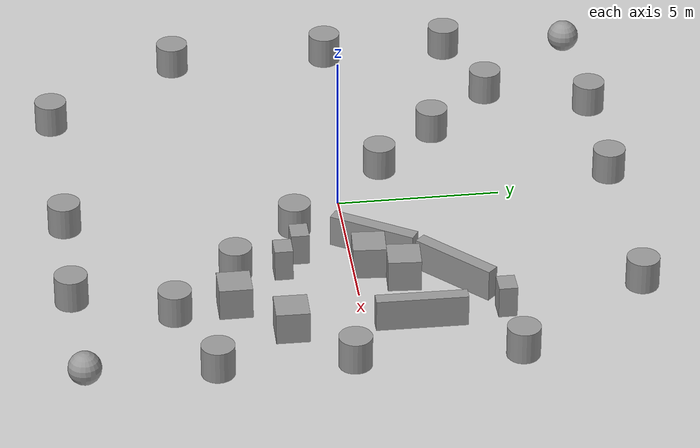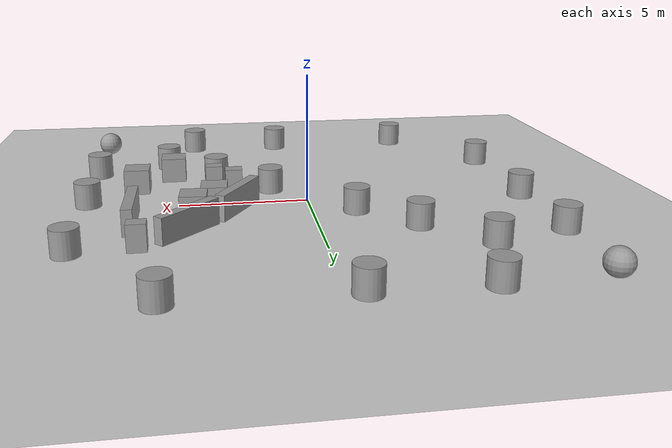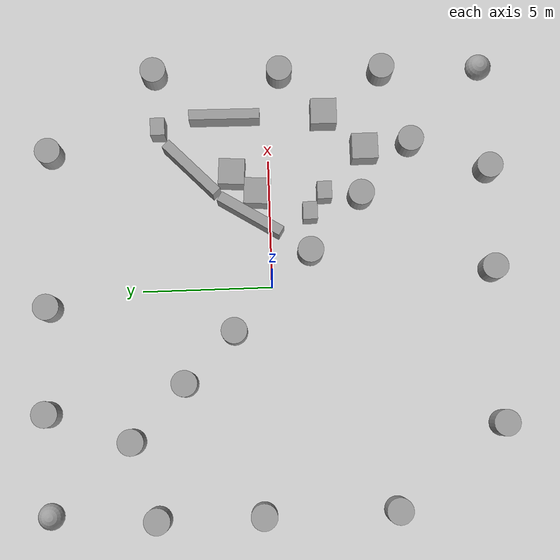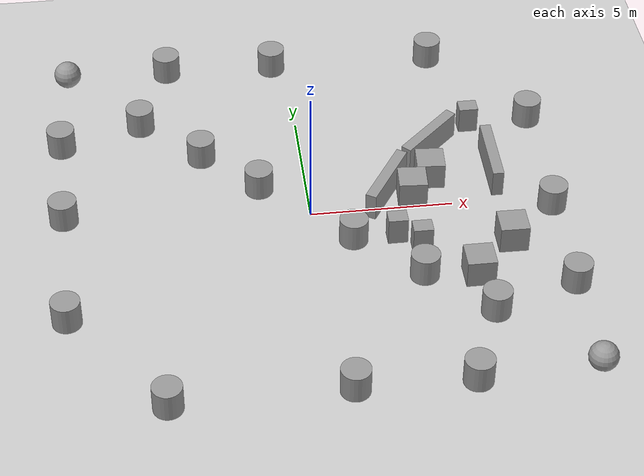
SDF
<sdf version="1.7">
 <world name="default">
  <light name="sun" type="directional">
   <pose>0 0 10 0 -0 0</pose>
   <diffuse>0.8 0.8 0.8 1</diffuse>
   <specular>0.2 0.2 0.2 1</specular>
   <attenuation>
    <range>1000</range>
    <constant>0.9</constant>
    <linear>0.01</linear>
    <quadratic>0.001</quadratic>
   </attenuation>
   <direction>-0.5 0.1 -0.9</direction>
   <spot><inner_angle>0</inner_angle><outer_angle>0</outer_angle><falloff>0</falloff></spot>
  </light>
  <model name="ground_plane">
   <static>1</static>
   <link name="link">
    <collision name="collision">
     <geometry><plane><normal>0 0 1</normal><size>100 100</size></plane></geometry>
     <surface>
      <contact><collide_bitmask>65535</collide_bitmask></contact>
      <friction><ode><mu>100</mu><mu2>50</mu2></ode></friction>
     </surface>
    </collision>
    <visual name="visual">
     <cast_shadows>0</cast_shadows>
     <geometry><plane><normal>0 0 1</normal><size>100 100</size></plane></geometry>
     <material>
      <script><uri>file://media/materials/scripts/gazebo.material</uri><name>Gazebo/Grey</name></script>
     </material>
    </visual>
   </link>
  </model>
  <gravity>0 0 -9.8</gravity>
  <magnetic_field>6e-06 2.3e-05 -4.2e-05</magnetic_field>
  <atmosphere type="adiabatic"/>
  <physics type="ode">
   <max_step_size>0.001</max_step_size>
   <real_time_factor>1</real_time_factor>
   <real_time_update_rate>1000</real_time_update_rate>
  </physics>
  <scene><ambient>0.4 0.4 0.4 1</ambient><background>0.7 0.7 0.7 1</background><shadows>1</shadows></scene>
  <spherical_coordinates>
   <surface_model>EARTH_WGS84</surface_model>
   <latitude_deg>0</latitude_deg>
   <longitude_deg>0</longitude_deg>
   <elevation>0</elevation>
   <heading_deg>0</heading_deg>
  </spherical_coordinates>
  <model name="unit_cylinder_0">
   <pose>5.48267 8.46677 0.499994 -3e-06 -1e-06 -0</pose>
   <link name="link">
    <inertial>
     <mass>1</mass>
     <inertia><ixx>0.145833</ixx><ixy>0</ixy><ixz>0</ixz><iyy>0.145833</iyy><iyz>0</iyz><izz>0.125</izz></inertia>
    </inertial>
    <collision name="collision">
     <geometry><cylinder><radius>0.5</radius><length>1</length></cylinder></geometry>
    </collision>
    <visual name="visual">
     <geometry><cylinder><radius>0.5</radius><length>1</length></cylinder></geometry>
     <material>
      <script><name>Gazebo/Grey</name><uri>file://media/materials/scripts/gazebo.material</uri></script>
     </material>
    </visual>
   </link>
  </model>
  <model name="unit_sphere">
   <pose>8.38084 -8.34858 0.5 0 -0 0</pose>
   <link name="link">
    <inertial>
     <mass>1</mass>
     <inertia><ixx>0.1</ixx><ixy>0</ixy><ixz>0</ixz><iyy>0.1</iyy><iyz>0</iyz><izz>0.1</izz></inertia>
    </inertial>
    <collision name="collision"><geometry><sphere><radius>0.5</radius></sphere></geometry></collision>
    <visual name="visual">
     <geometry><sphere><radius>0.5</radius></sphere></geometry>
     <material>
      <script><name>Gazebo/Grey</name><uri>file://media/materials/scripts/gazebo.material</uri></script>
     </material>
    </visual>
   </link>
  </model>
  <model name="unit_sphere_0">
   <pose>-8.31687 8.47543 0.5 0 -0 0</pose>
   <link name="link">
    <inertial>
     <mass>1</mass>
     <inertia><ixx>0.1</ixx><ixy>0</ixy><ixz>0</ixz><iyy>0.1</iyy><iyz>0</iyz><izz>0.1</izz></inertia>
    </inertial>
    <collision name="collision"><geometry><sphere><radius>0.5</radius></sphere></geometry></collision>
    <visual name="visual">
     <geometry><sphere><radius>0.5</radius></sphere></geometry>
     <material>
      <script><name>Gazebo/Grey</name><uri>file://media/materials/scripts/gazebo.material</uri></script>
     </material>
    </visual>
   </link>
  </model>
  <model name="unit_cylinder_5">
   <pose>-4.56175 8.64096 0.499996 1e-06 -0 0</pose>
   <link name="link">
    <inertial>
     <mass>1</mass>
     <inertia><ixx>0.145833</ixx><ixy>0</ixy><ixz>0</ixz><iyy>0.145833</iyy><iyz>0</iyz><izz>0.125</izz></inertia>
    </inertial>
    <collision name="collision">
     <geometry><cylinder><radius>0.5</radius><length>1</length></cylinder></geometry>
    </collision>
    <visual name="visual">
     <geometry><cylinder><radius>0.5</radius><length>1</length></cylinder></geometry>
     <material>
      <script><name>Gazebo/Grey</name><uri>file://media/materials/scripts/gazebo.material</uri></script>
     </material>
    </visual>
   </link>
  </model>
  <model name="unit_cylinder_9">
   <pose>-5.45244 -8.52381 0.499996 1e-06 -0 0</pose>
   <link name="link">
    <inertial>
     <mass>1</mass>
     <inertia><ixx>0.145833</ixx><ixy>0</ixy><ixz>0</ixz><iyy>0.145833</iyy><iyz>0</iyz><izz>0.125</izz></inertia>
    </inertial>
    <collision name="collision">
     <geometry><cylinder><radius>0.5</radius><length>1</length></cylinder></geometry>
    </collision>
    <visual name="visual">
     <geometry><cylinder><radius>0.5</radius><length>1</length></cylinder></geometry>
     <material>
      <script><name>Gazebo/Grey</name><uri>file://media/materials/scripts/gazebo.material</uri></script>
     </material>
    </visual>
   </link>
  </model>
  <model name="unit_cylinder_4">
   <pose>-8.59965 4.53452 0.499996 2e-06 -0 0</pose>
   <link name="link">
    <inertial>
     <mass>1</mass>
     <inertia><ixx>0.145833</ixx><ixy>0</ixy><ixz>0</ixz><iyy>0.145833</iyy><iyz>0</iyz><izz>0.125</izz></inertia>
    </inertial>
    <collision name="collision">
     <geometry><cylinder><radius>0.5</radius><length>1</length></cylinder></geometry>
    </collision>
    <visual name="visual">
     <geometry><cylinder><radius>0.5</radius><length>1</length></cylinder></geometry>
     <material>
      <script><name>Gazebo/Grey</name><uri>file://media/materials/scripts/gazebo.material</uri></script>
     </material>
    </visual>
   </link>
  </model>
  <model name="unit_cylinder_13">
   <pose>-0.546293 8.56291 0.499996 2e-06 -0 0</pose>
   <link name="link">
    <inertial>
     <mass>1</mass>
     <inertia><ixx>0.145833</ixx><ixy>0</ixy><ixz>0</ixz><iyy>0.145833</iyy><iyz>0</iyz><izz>0.125</izz></inertia>
    </inertial>
    <collision name="collision">
     <geometry><cylinder><radius>0.5</radius><length>1</length></cylinder></geometry>
    </collision>
    <visual name="visual">
     <geometry><cylinder><radius>0.5</radius><length>1</length></cylinder></geometry>
     <material>
      <script><name>Gazebo/Grey</name><uri>file://media/materials/scripts/gazebo.material</uri></script>
     </material>
    </visual>
   </link>
  </model>
  <model name="unit_cylinder_14">
   <pose>4.34909 -8.48951 0.499993 -2e-06 -0 -0</pose>
   <link name="link">
    <inertial>
     <mass>1</mass>
     <inertia><ixx>0.145833</ixx><ixy>0</ixy><ixz>0</ixz><iyy>0.145833</iyy><iyz>0</iyz><izz>0.125</izz></inertia>
    </inertial>
    <collision name="collision">
     <geometry><cylinder><radius>0.5</radius><length>1</length></cylinder></geometry>
    </collision>
    <visual name="visual">
     <geometry><cylinder><radius>0.5</radius><length>1</length></cylinder></geometry>
     <material>
      <script><name>Gazebo/Grey</name><uri>file://media/materials/scripts/gazebo.material</uri></script>
     </material>
    </visual>
   </link>
  </model>
  <model name="unit_cylinder_15">
   <pose>0.435022 -8.45658 0.499993 -2e-06 -0 -0</pose>
   <link name="link">
    <inertial>
     <mass>1</mass>
     <inertia><ixx>0.145833</ixx><ixy>0</ixy><ixz>0</ixz><iyy>0.145833</iyy><iyz>0</iyz><izz>0.125</izz></inertia>
    </inertial>
    <collision name="collision">
     <geometry><cylinder><radius>0.5</radius><length>1</length></cylinder></geometry>
    </collision>
    <visual name="visual">
     <geometry><cylinder><radius>0.5</radius><length>1</length></cylinder></geometry>
     <material>
      <script><name>Gazebo/Grey</name><uri>file://media/materials/scripts/gazebo.material</uri></script>
     </material>
    </visual>
   </link>
  </model>
  <model name="unit_cylinder_2">
   <pose>8.42167 -4.51497 0.499996 3e-06 1e-06 -0</pose>
   <link name="link">
    <inertial>
     <mass>1</mass>
     <inertia><ixx>0.145833</ixx><ixy>0</ixy><ixz>0</ixz><iyy>0.145833</iyy><iyz>0</iyz><izz>0.125</izz></inertia>
    </inertial>
    <collision name="collision">
     <geometry><cylinder><radius>0.5</radius><length>1</length></cylinder></geometry>
    </collision>
    <visual name="visual">
     <geometry><cylinder><radius>0.5</radius><length>1</length></cylinder></geometry>
     <material>
      <script><name>Gazebo/Grey</name><uri>file://media/materials/scripts/gazebo.material</uri></script>
     </material>
    </visual>
   </link>
  </model>
  <model name="unit_cylinder_3">
   <pose>8.46452 -0.53683 0.499996 3e-06 1e-06 -0</pose>
   <link name="link">
    <inertial>
     <mass>1</mass>
     <inertia><ixx>0.145833</ixx><ixy>0</ixy><ixz>0</ixz><iyy>0.145833</iyy><iyz>0</iyz><izz>0.125</izz></inertia>
    </inertial>
    <collision name="collision">
     <geometry><cylinder><radius>0.5</radius><length>1</length></cylinder></geometry>
    </collision>
    <visual name="visual">
     <geometry><cylinder><radius>0.5</radius><length>1</length></cylinder></geometry>
     <material>
      <script><name>Gazebo/Grey</name><uri>file://media/materials/scripts/gazebo.material</uri></script>
     </material>
    </visual>
   </link>
  </model>
  <model name="unit_cylinder_6">
   <pose>-8.57603 0.593668 0.499996 3e-06 1e-06 -0</pose>
   <link name="link">
    <inertial>
     <mass>1</mass>
     <inertia><ixx>0.145833</ixx><ixy>0</ixy><ixz>0</ixz><iyy>0.145833</iyy><iyz>0</iyz><izz>0.125</izz></inertia>
    </inertial>
    <collision name="collision">
     <geometry><cylinder><radius>0.5</radius><length>1</length></cylinder></geometry>
    </collision>
    <visual name="visual">
     <geometry><cylinder><radius>0.5</radius><length>1</length></cylinder></geometry>
     <material>
      <script><name>Gazebo/Grey</name><uri>file://media/materials/scripts/gazebo.material</uri></script>
     </material>
    </visual>
   </link>
  </model>
  <model name="unit_cylinder_8">
   <pose>-8.52981 -4.40025 0.499997 3e-06 2e-06 0</pose>
   <link name="link">
    <inertial>
     <mass>1</mass>
     <inertia><ixx>0.145833</ixx><ixy>0</ixy><ixz>0</ixz><iyy>0.145833</iyy><iyz>0</iyz><izz>0.125</izz></inertia>
    </inertial>
    <collision name="collision">
     <geometry><cylinder><radius>0.5</radius><length>1</length></cylinder></geometry>
    </collision>
    <visual name="visual">
     <geometry><cylinder><radius>0.5</radius><length>1</length></cylinder></geometry>
     <material>
      <script><name>Gazebo/Grey</name><uri>file://media/materials/scripts/gazebo.material</uri></script>
     </material>
    </visual>
   </link>
  </model>
  <model name="unit_cylinder">
   <pose>8.56086 4.36649 0.499997 3e-06 2e-06 0</pose>
   <link name="link">
    <inertial>
     <mass>1</mass>
     <inertia><ixx>0.145833</ixx><ixy>0</ixy><ixz>0</ixz><iyy>0.145833</iyy><iyz>0</iyz><izz>0.125</izz></inertia>
    </inertial>
    <collision name="collision">
     <geometry><cylinder><radius>0.5</radius><length>1</length></cylinder></geometry>
    </collision>
    <visual name="visual">
     <geometry><cylinder><radius>0.5</radius><length>1</length></cylinder></geometry>
     <material>
      <script><name>Gazebo/Grey</name><uri>file://media/materials/scripts/gazebo.material</uri></script>
     </material>
    </visual>
   </link>
  </model>
  <model name="unit_cylinder_10">
   <pose>1.30985 -1.49912 0.499991 -1e-06 -1e-06 0.029438</pose>
   <link name="link">
    <inertial>
     <mass>1</mass>
     <inertia><ixx>0.145833</ixx><ixy>0</ixy><ixz>0</ixz><iyy>0.145833</iyy><iyz>0</iyz><izz>0.125</izz></inertia>
    </inertial>
    <collision name="collision">
     <geometry><cylinder><radius>0.5</radius><length>1</length></cylinder></geometry>
    </collision>
    <visual name="visual">
     <geometry><cylinder><radius>0.5</radius><length>1</length></cylinder></geometry>
     <material>
      <script><name>Gazebo/Grey</name><uri>file://media/materials/scripts/gazebo.material</uri></script>
     </material>
    </visual>
   </link>
  </model>
  <model name="unit_cylinder_12">
   <pose>3.4547 -3.51971 0.499994 -3e-06 -1e-06 -0</pose>
   <link name="link">
    <inertial>
     <mass>1</mass>
     <inertia><ixx>0.145833</ixx><ixy>0</ixy><ixz>0</ixz><iyy>0.145833</iyy><iyz>0</iyz><izz>0.125</izz></inertia>
    </inertial>
    <collision name="collision">
     <geometry><cylinder><radius>0.5</radius><length>1</length></cylinder></geometry>
    </collision>
    <visual name="visual">
     <geometry><cylinder><radius>0.5</radius><length>1</length></cylinder></geometry>
     <material>
      <script><name>Gazebo/Grey</name><uri>file://media/materials/scripts/gazebo.material</uri></script>
     </material>
    </visual>
   </link>
  </model>
  <model name="unit_cylinder_7">
   <pose>-5.69693 5.45815 0.499996 3e-06 1e-06 -0</pose>
   <link name="link">
    <inertial>
     <mass>1</mass>
     <inertia><ixx>0.145833</ixx><ixy>0</ixy><ixz>0</ixz><iyy>0.145833</iyy><iyz>0</iyz><izz>0.125</izz></inertia>
    </inertial>
    <collision name="collision">
     <geometry><cylinder><radius>0.5</radius><length>1</length></cylinder></geometry>
    </collision>
    <visual name="visual">
     <geometry><cylinder><radius>0.5</radius><length>1</length></cylinder></geometry>
     <material>
      <script><name>Gazebo/Grey</name><uri>file://media/materials/scripts/gazebo.material</uri></script>
     </material>
    </visual>
   </link>
  </model>
  <model name="unit_cylinder_16">
   <pose>5.50473 -5.50809 0.499994 -3e-06 -1e-06 -0</pose>
   <link name="link">
    <inertial>
     <mass>1</mass>
     <inertia><ixx>0.145833</ixx><ixy>0</ixy><ixz>0</ixz><iyy>0.145833</iyy><iyz>0</iyz><izz>0.125</izz></inertia>
    </inertial>
    <collision name="collision">
     <geometry><cylinder><radius>0.5</radius><length>1</length></cylinder></geometry>
    </collision>
    <visual name="visual">
     <geometry><cylinder><radius>0.5</radius><length>1</length></cylinder></geometry>
     <material>
      <script><name>Gazebo/Grey</name><uri>file://media/materials/scripts/gazebo.material</uri></script>
     </material>
    </visual>
   </link>
  </model>
  <model name="unit_cylinder_11">
   <pose>-3.59284 3.42277 0.499996 3e-06 1e-06 -0</pose>
   <link name="link">
    <inertial>
     <mass>1</mass>
     <inertia><ixx>0.145833</ixx><ixy>0</ixy><ixz>0</ixz><iyy>0.145833</iyy><iyz>0</iyz><izz>0.125</izz></inertia>
    </inertial>
    <collision name="collision">
     <geometry><cylinder><radius>0.5</radius><length>1</length></cylinder></geometry>
    </collision>
    <visual name="visual">
     <geometry><cylinder><radius>0.5</radius><length>1</length></cylinder></geometry>
     <material>
      <script><name>Gazebo/Grey</name><uri>file://media/materials/scripts/gazebo.material</uri></script>
     </material>
    </visual>
   </link>
  </model>
  <model name="unit_cylinder_17">
   <pose>-1.67405 1.50173 0.499996 3e-06 1e-06 -0</pose>
   <link name="link">
    <inertial>
     <mass>1</mass>
     <inertia><ixx>0.145833</ixx><ixy>0</ixy><ixz>0</ixz><iyy>0.145833</iyy><iyz>0</iyz><izz>0.125</izz></inertia>
    </inertial>
    <collision name="collision">
     <geometry><cylinder><radius>0.5</radius><length>1</length></cylinder></geometry>
    </collision>
    <visual name="visual">
     <geometry><cylinder><radius>0.5</radius><length>1</length></cylinder></geometry>
     <material>
      <script><name>Gazebo/Grey</name><uri>file://media/materials/scripts/gazebo.material</uri></script>
     </material>
    </visual>
   </link>
  </model>
  <model name="unit_box">
   <pose>6.68937 -2.19328 0.499895 7.7e-05 1e-06 -0.012255</pose>
   <link name="link">
    <inertial>
     <mass>1</mass>
     <inertia>
      <ixx>0.166667</ixx>
      <ixy>0</ixy>
      <ixz>0</ixz>
      <iyy>0.166667</iyy>
      <iyz>0</iyz>
      <izz>0.166667</izz>
     </inertia>
    </inertial>
    <collision name="collision"><geometry><box><size>1 0.999999 1</size></box></geometry></collision>
    <visual name="visual">
     <geometry><box><size>1 0.999999 1</size></box></geometry>
     <material>
      <script><name>Gazebo/Grey</name><uri>file://media/materials/scripts/gazebo.material</uri></script>
     </material>
    </visual>
   </link>
  </model>
  <model name="unit_box_clone">
   <pose>6.69288 1.64598 0.499895 -7.7e-05 -1e-06 -0.012245</pose>
   <link name="link">
    <inertial>
     <mass>1</mass>
     <inertia>
      <ixx>0.166667</ixx>
      <ixy>0</ixy>
      <ixz>0</ixz>
      <iyy>0.166667</iyy>
      <iyz>0</iyz>
      <izz>0.166667</izz>
     </inertia>
    </inertial>
    <collision name="collision"><geometry><box><size>0.394404 2.73224 1</size></box></geometry></collision>
    <visual name="visual">
     <geometry><box><size>0.394404 2.73224 1</size></box></geometry>
     <material>
      <script><name>Gazebo/Grey</name><uri>file://media/materials/scripts/gazebo.material</uri></script>
     </material>
    </visual>
   </link>
  </model>
  <model name="unit_box_0">
   <pose>3.64452 0.473617 0.499995 -0 1e-05 -0.065864</pose>
   <link name="link">
    <inertial>
     <mass>1</mass>
     <inertia>
      <ixx>0.166667</ixx>
      <ixy>0</ixy>
      <ixz>0</ixz>
      <iyy>0.166667</iyy>
      <iyz>0</iyz>
      <izz>0.166667</izz>
     </inertia>
    </inertial>
    <collision name="collision"><geometry><box><size>1 1 1</size></box></geometry></collision>
    <visual name="visual">
     <geometry><box><size>1 1 1</size></box></geometry>
     <material>
      <script><name>Gazebo/Grey</name><uri>file://media/materials/scripts/gazebo.material</uri></script>
     </material>
    </visual>
   </link>
  </model>
  <model name="unit_box_clone_0">
   <pose>2.76826 0.747829 0.5 0 -1e-06 -0.556183</pose>
   <link name="link">
    <inertial>
     <mass>1</mass>
     <inertia>
      <ixx>0.166667</ixx>
      <ixy>0</ixy>
      <ixz>0</ixz>
      <iyy>0.166667</iyy>
      <iyz>0</iyz>
      <izz>0.166667</izz>
     </inertia>
    </inertial>
    <collision name="collision"><geometry><box><size>0.394404 2.73224 1</size></box></geometry></collision>
    <visual name="visual">
     <geometry><box><size>0.394404 2.73224 1</size></box></geometry>
     <material>
      <script><name>Gazebo/Grey</name><uri>file://media/materials/scripts/gazebo.material</uri></script>
     </material>
    </visual>
   </link>
  </model>
  <model name="unit_box_clone_0_clone">
   <pose>4.63345 2.96656 0.499999 1e-06 -2e-06 -0.797019</pose>
   <link name="link">
    <inertial>
     <mass>1</mass>
     <inertia>
      <ixx>0.166667</ixx>
      <ixy>0</ixy>
      <ixz>0</ixz>
      <iyy>0.166667</iyy>
      <iyz>0</iyz>
      <izz>0.166667</izz>
     </inertia>
    </inertial>
    <collision name="collision"><geometry><box><size>0.394404 2.73224 1</size></box></geometry></collision>
    <visual name="visual">
     <geometry><box><size>0.394404 2.73224 1</size></box></geometry>
     <material>
      <script><name>Gazebo/Grey</name><uri>file://media/materials/scripts/gazebo.material</uri></script>
     </material>
    </visual>
   </link>
  </model>
  <model name="unit_box_1">
   <pose>4.42764 1.4248 0.5 0 0 -0.065863</pose>
   <link name="link">
    <inertial>
     <mass>1</mass>
     <inertia>
      <ixx>0.166667</ixx>
      <ixy>0</ixy>
      <ixz>0</ixz>
      <iyy>0.166667</iyy>
      <iyz>0</iyz>
      <izz>0.166667</izz>
     </inertia>
    </inertial>
    <collision name="collision"><geometry><box><size>1 1 1</size></box></geometry></collision>
    <visual name="visual">
     <geometry><box><size>1 1 1</size></box></geometry>
     <material>
      <script><name>Gazebo/Grey</name><uri>file://media/materials/scripts/gazebo.material</uri></script>
     </material>
    </visual>
   </link>
  </model>
  <model name="unit_box_2">
   <pose>5.2577 -3.72395 0.5 0 -0 2.7e-05</pose>
   <link name="link">
    <inertial>
     <mass>1</mass>
     <inertia>
      <ixx>0.166667</ixx>
      <ixy>0</ixy>
      <ixz>0</ixz>
      <iyy>0.166667</iyy>
      <iyz>0</iyz>
      <izz>0.166667</izz>
     </inertia>
    </inertial>
    <collision name="collision"><geometry><box><size>0.999997 0.999999 1</size></box></geometry></collision>
    <visual name="visual">
     <geometry><box><size>0.999997 0.999999 1</size></box></geometry>
     <material>
      <script><name>Gazebo/Grey</name><uri>file://media/materials/scripts/gazebo.material</uri></script>
     </material>
    </visual>
   </link>
  </model>
  <model name="unit_box_2_clone">
   <pose>2.80807 -1.53233 0.5 0 -0 2.7e-05</pose>
   <link name="link">
    <inertial>
     <mass>1</mass>
     <inertia>
      <ixx>0.166667</ixx>
      <ixy>0</ixy>
      <ixz>0</ixz>
      <iyy>0.166667</iyy>
      <iyz>0</iyz>
      <izz>0.166667</izz>
     </inertia>
    </inertial>
    <collision name="collision"><geometry><box><size>0.681945 0.554723 1</size></box></geometry></collision>
    <visual name="visual">
     <geometry><box><size>0.681945 0.554723 1</size></box></geometry>
     <material>
      <script><name>Gazebo/Grey</name><uri>file://media/materials/scripts/gazebo.material</uri></script>
     </material>
    </visual>
   </link>
  </model>
  <model name="unit_box_2_clone_0">
   <pose>3.58461 -2.10817 0.5 0 -0 2.7e-05</pose>
   <link name="link">
    <inertial>
     <mass>1</mass>
     <inertia>
      <ixx>0.166667</ixx>
      <ixy>0</ixy>
      <ixz>0</ixz>
      <iyy>0.166667</iyy>
      <iyz>0</iyz>
      <izz>0.166667</izz>
     </inertia>
    </inertial>
    <collision name="collision"><geometry><box><size>0.681945 0.554723 1</size></box></geometry></collision>
    <visual name="visual">
     <geometry><box><size>0.681945 0.554723 1</size></box></geometry>
     <material>
      <script><name>Gazebo/Grey</name><uri>file://media/materials/scripts/gazebo.material</uri></script>
     </material>
    </visual>
   </link>
  </model>
  <model name="unit_box_2_clone_1">
   <pose>6.29078 4.2244 0.5 0 -0 1.7e-05</pose>
   <link name="link">
    <inertial>
     <mass>1</mass>
     <inertia>
      <ixx>0.166667</ixx>
      <ixy>0</ixy>
      <ixz>0</ixz>
      <iyy>0.166667</iyy>
      <iyz>0</iyz>
      <izz>0.166667</izz>
     </inertia>
    </inertial>
    <collision name="collision"><geometry><box><size>0.681945 0.554723 1</size></box></geometry></collision>
    <visual name="visual">
     <geometry><box><size>0.681945 0.554723 1</size></box></geometry>
     <material>
      <script><name>Gazebo/Grey</name><uri>file://media/materials/scripts/gazebo.material</uri></script>
     </material>
    </visual>
   </link>
  </model>
 </world>
</sdf>
